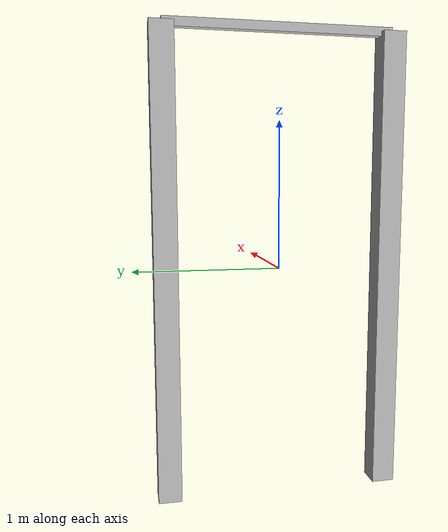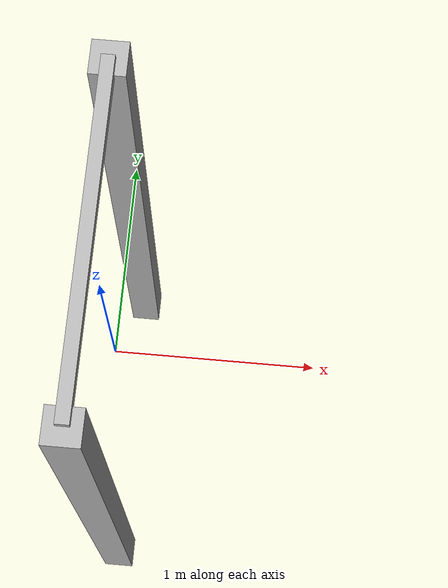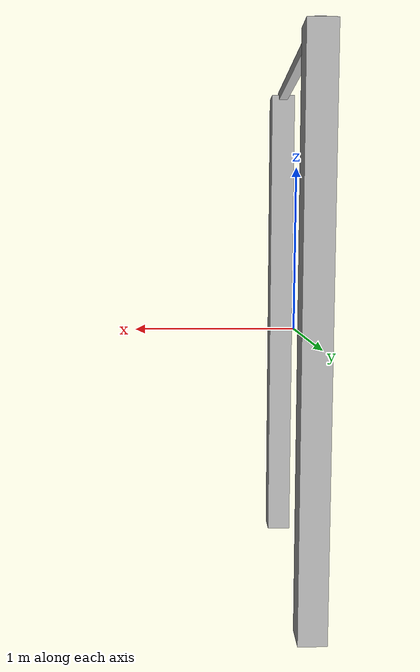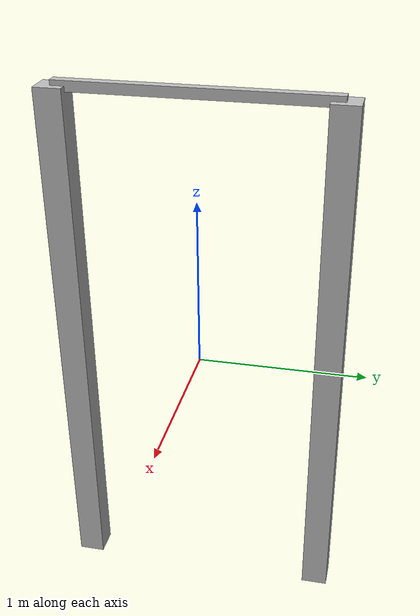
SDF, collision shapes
<?xml version="1.0"?>
<sdf version="1.4">
  <model name="gate">
    <static>true</static>
    <pose>0 0 0 0 0 0</pose>
    <link name="link">
      <collision name="right_collision">
        <pose>0 -0.78 0 0 0 0</pose>
        <geometry>
          <box>
            <size>0.16 0.16 3.2</size>
          </box>
        </geometry>
      </collision>

      <collision name="left_collision">
        <pose>0 0.78 0 0 0 0</pose>
        <geometry>
          <box>
            <size>0.16 0.16 3.2</size>
          </box>
        </geometry>
      </collision>

      <collision name="top_collision">
        <pose>0 0 1.6 0 0 0</pose>
        <geometry>
          <box>
            <size>0.06 1.56 0.06</size>
          </box>
        </geometry>
      </collision>

      <visual name="visual">
        <pose>0 0 0 0 0 0</pose>
        <geometry>
          <mesh>
            <uri>model://gate/meshes/gate.dae</uri>
            <scale> 0.4 0.3 0.4 </scale>
          </mesh>
        </geometry>
        <material>
          <script>
            <uri>model://gate/materials/scripts/gate.material</uri>
            <uri>model://gate/materials/textures</uri>
            <name>vrc/gate</name>
          </script>
        </material>
      </visual>

    </link>
  </model>
</sdf>
